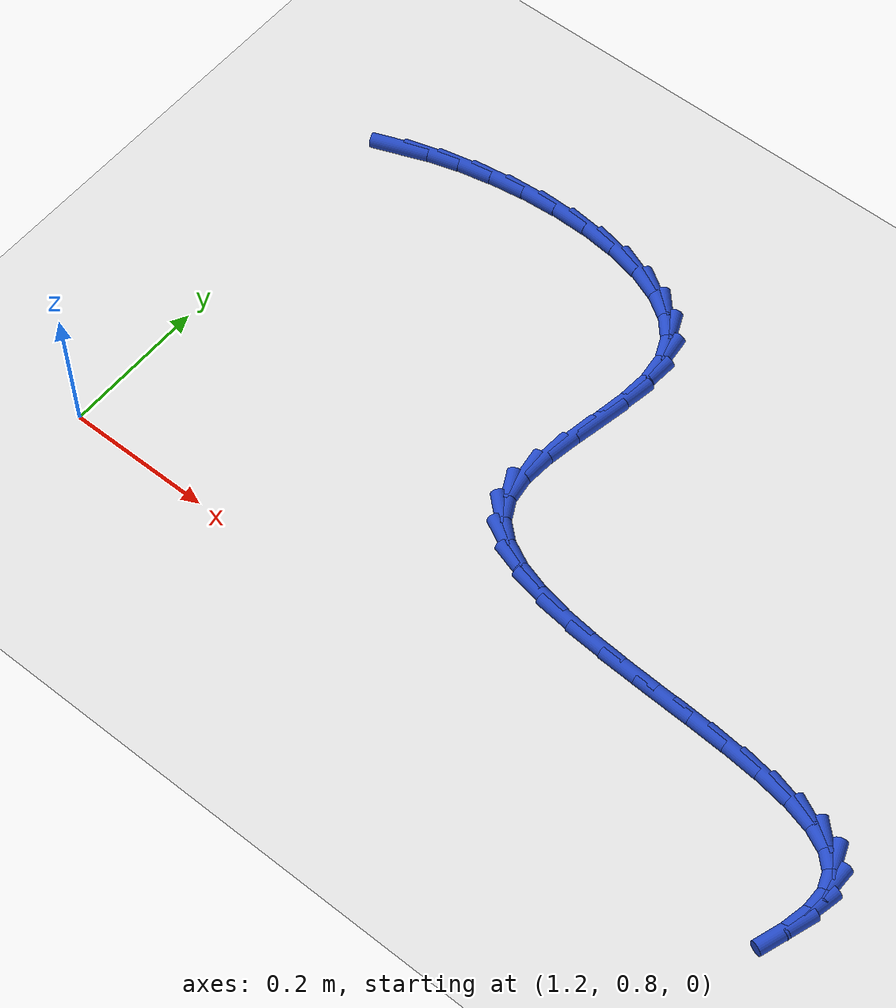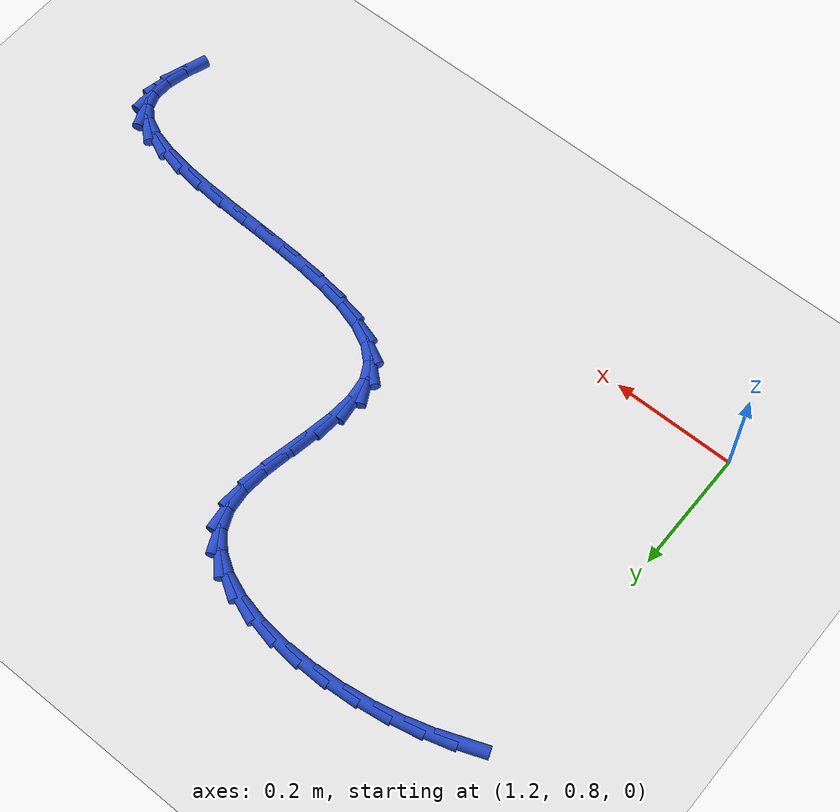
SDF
<sdf version="1.6">
 <world name="default">
  <model name="ground_plane">
   <static>1</static>
   <link name="link">
    <collision name="collision">
     <geometry><plane><normal>0 0 1</normal><size>100 100</size></plane></geometry>
     <surface><friction><ode><mu>100</mu><mu2>50</mu2></ode></friction></surface>
    </collision>
    <visual name="visual">
     <cast_shadows>0</cast_shadows>
     <geometry><plane><normal>0 0 1</normal><size>100 100</size></plane></geometry>
     <material>
      <script><uri>file://media/materials/scripts/gazebo.material</uri><name>Gazebo/WhiteGlow</name></script>
     </material>
    </visual>
   </link>
  </model>
  <model name="line">
   <link name="link_53">
    <pose>1.2377877267075943 1.3753082961202483 0.01 0 1.57 0.36587993217432146</pose>
    <collision name="collision">
     <geometry><cylinder><radius>0.01</radius><length>0.08</length></cylinder></geometry>
    </collision>
    <visual name="visual">
     <material>
      <script><name>Gazebo/Blue</name><uri>file://media/materials/scripts/gazebo.material</uri></script>
     </material>
     <geometry><cylinder><radius>0.01</radius><length>0.08</length></cylinder></geometry>
    </visual>
   </link>
   <link name="link_54">
    <pose>1.2789416327303853 1.391075625690705 0.01 0 1.57 0.28325678365939105</pose>
    <collision name="collision">
     <geometry><cylinder><radius>0.01</radius><length>0.08</length></cylinder></geometry>
    </collision>
    <visual name="visual">
     <material>
      <script><name>Gazebo/Blue</name><uri>file://media/materials/scripts/gazebo.material</uri></script>
     </material>
     <geometry><cylinder><radius>0.01</radius><length>0.08</length></cylinder></geometry>
    </visual>
   </link>
   <link name="link_55">
    <pose>1.3239797992044735 1.4041855028396157 0.01 0 1.57 0.20826863636165976</pose>
    <collision name="collision">
     <geometry><cylinder><radius>0.01</radius><length>0.08</length></cylinder></geometry>
    </collision>
    <visual name="visual">
     <material>
      <script><name>Gazebo/Blue</name><uri>file://media/materials/scripts/gazebo.material</uri></script>
     </material>
     <geometry><cylinder><radius>0.01</radius><length>0.08</length></cylinder></geometry>
    </visual>
   </link>
   <link name="link_56">
    <pose>1.3718929490592258 1.414311136912495 0.01 0 1.57 0.13714847889465667</pose>
    <collision name="collision">
     <geometry><cylinder><radius>0.01</radius><length>0.08</length></cylinder></geometry>
    </collision>
    <visual name="visual">
     <material>
      <script><name>Gazebo/Blue</name><uri>file://media/materials/scripts/gazebo.material</uri></script>
     </material>
     <geometry><cylinder><radius>0.01</radius><length>0.08</length></cylinder></geometry>
    </visual>
   </link>
   <link name="link_57">
    <pose>1.421344315159865 1.4211361625496135 0.01 0 1.57 0.06451998881389966</pose>
    <collision name="collision">
     <geometry><cylinder><radius>0.01</radius><length>0.08</length></cylinder></geometry>
    </collision>
    <visual name="visual">
     <material>
      <script><name>Gazebo/Blue</name><uri>file://media/materials/scripts/gazebo.material</uri></script>
     </material>
     <geometry><cylinder><radius>0.01</radius><length>0.08</length></cylinder></geometry>
    </visual>
   </link>
   <link name="link_58">
    <pose>1.4709971303716098 1.4243442143912395 0.01 0 1.57 -0.014947871091928031</pose>
    <collision name="collision">
     <geometry><cylinder><radius>0.01</radius><length>0.08</length></cylinder></geometry>
    </collision>
    <visual name="visual">
     <material>
      <script><name>Gazebo/Blue</name><uri>file://media/materials/scripts/gazebo.material</uri></script>
     </material>
     <geometry><cylinder><radius>0.01</radius><length>0.08</length></cylinder></geometry>
    </visual>
   </link>
   <link name="link_59">
    <pose>1.519514627559683 1.4236189270776434 0.01 0 1.57 -0.10762781949264737</pose>
    <collision name="collision">
     <geometry><cylinder><radius>0.01</radius><length>0.08</length></cylinder></geometry>
    </collision>
    <visual name="visual">
     <material>
      <script><name>Gazebo/Blue</name><uri>file://media/materials/scripts/gazebo.material</uri></script>
     </material>
     <geometry><cylinder><radius>0.01</radius><length>0.08</length></cylinder></geometry>
    </visual>
   </link>
   <link name="link_60">
    <pose>1.5655600395893052 1.4186439352490954 0.01 0 1.57 -0.22216691962087345</pose>
    <collision name="collision">
     <geometry><cylinder><radius>0.01</radius><length>0.08</length></cylinder></geometry>
    </collision>
    <visual name="visual">
     <material>
      <script><name>Gazebo/Blue</name><uri>file://media/materials/scripts/gazebo.material</uri></script>
     </material>
     <geometry><cylinder><radius>0.01</radius><length>0.08</length></cylinder></geometry>
    </visual>
   </link>
   <link name="link_61">
    <pose>1.6077965993256975 1.4091028735458642 0.01 0 1.57 -0.37087354583040577</pose>
    <collision name="collision">
     <geometry><cylinder><radius>0.01</radius><length>0.08</length></cylinder></geometry>
    </collision>
    <visual name="visual">
     <material>
      <script><name>Gazebo/Blue</name><uri>file://media/materials/scripts/gazebo.material</uri></script>
     </material>
     <geometry><cylinder><radius>0.01</radius><length>0.08</length></cylinder></geometry>
    </visual>
   </link>
   <link name="link_62">
    <pose>1.6448875396340805 1.3946793766082195 0.01 0 1.57 -0.5700735696764705</pose>
    <collision name="collision">
     <geometry><cylinder><radius>0.01</radius><length>0.08</length></cylinder></geometry>
    </collision>
    <visual name="visual">
     <material>
      <script><name>Gazebo/Blue</name><uri>file://media/materials/scripts/gazebo.material</uri></script>
     </material>
     <geometry><cylinder><radius>0.01</radius><length>0.08</length></cylinder></geometry>
    </visual>
   </link>
   <link name="link_63">
    <pose>1.6754960933796759 1.3750570790764312 0.01 0 1.57 -0.8343516583037315</pose>
    <collision name="collision">
     <geometry><cylinder><radius>0.01</radius><length>0.08</length></cylinder></geometry>
    </collision>
    <visual name="visual">
     <material>
      <script><name>Gazebo/Blue</name><uri>file://media/materials/scripts/gazebo.material</uri></script>
     </material>
     <geometry><cylinder><radius>0.01</radius><length>0.08</length></cylinder></geometry>
    </visual>
   </link>
   <link name="link_64">
    <pose>1.6982854934277045 1.3499196155907696 0.01 0 1.57 -1.1560919919292252</pose>
    <collision name="collision">
     <geometry><cylinder><radius>0.01</radius><length>0.08</length></cylinder></geometry>
    </collision>
    <visual name="visual">
     <material>
      <script><name>Gazebo/Blue</name><uri>file://media/materials/scripts/gazebo.material</uri></script>
     </material>
     <geometry><cylinder><radius>0.01</radius><length>0.08</length></cylinder></geometry>
    </visual>
   </link>
   <link name="link_65">
    <pose>1.7119191188033827 1.318950693500428 0.01 0 1.57 -1.4624965007417594</pose>
    <collision name="collision">
     <geometry><cylinder><radius>0.01</radius><length>0.08</length></cylinder></geometry>
    </collision>
    <visual name="visual">
     <material>
      <script><name>Gazebo/Blue</name><uri>file://media/materials/scripts/gazebo.material</uri></script>
     </material>
     <geometry><cylinder><radius>0.01</radius><length>0.08</length></cylinder></geometry>
    </visual>
   </link>
   <link name="link_66">
    <pose>1.7159087505874528 1.282256067249752 0.01 0 1.57 1.4903596662822713</pose>
    <collision name="collision">
     <geometry><cylinder><radius>0.01</radius><length>0.08</length></cylinder></geometry>
    </collision>
    <visual name="visual">
     <material>
      <script><name>Gazebo/Blue</name><uri>file://media/materials/scripts/gazebo.material</uri></script>
     </material>
     <geometry><cylinder><radius>0.01</radius><length>0.08</length></cylinder></geometry>
    </visual>
   </link>
   <link name="link_67">
    <pose>1.7126118618357997 1.2413571125960923 0.01 0 1.57 1.3963177285786905</pose>
    <collision name="collision">
     <geometry><cylinder><radius>0.01</radius><length>0.08</length></cylinder></geometry>
    </collision>
    <visual name="visual">
     <material>
      <script><name>Gazebo/Blue</name><uri>file://media/materials/scripts/gazebo.material</uri></script>
     </material>
     <geometry><cylinder><radius>0.01</radius><length>0.08</length></cylinder></geometry>
    </visual>
   </link>
   <link name="link_68">
    <pose>1.7049818964414296 1.1980716776579436 0.01 0 1.57 1.3681707289335718</pose>
    <collision name="collision">
     <geometry><cylinder><radius>0.01</radius><length>0.08</length></cylinder></geometry>
    </collision>
    <visual name="visual">
     <material>
      <script><name>Gazebo/Blue</name><uri>file://media/materials/scripts/gazebo.material</uri></script>
     </material>
     <geometry><cylinder><radius>0.01</radius><length>0.08</length></cylinder></geometry>
    </visual>
   </link>
   <link name="link_69">
    <pose>1.6959722982973509 1.1542176105538025 0.01 0 1.57 1.3980075887196655</pose>
    <collision name="collision">
     <geometry><cylinder><radius>0.01</radius><length>0.08</length></cylinder></geometry>
    </collision>
    <visual name="visual">
     <material>
      <script><name>Gazebo/Blue</name><uri>file://media/materials/scripts/gazebo.material</uri></script>
     </material>
     <geometry><cylinder><radius>0.01</radius><length>0.08</length></cylinder></geometry>
    </visual>
   </link>
   <link name="link_70">
    <pose>1.6885365112965702 1.1116127594021636 0.01 0 1.57 1.4973652478801267</pose>
    <collision name="collision">
     <geometry><cylinder><radius>0.01</radius><length>0.08</length></cylinder></geometry>
    </collision>
    <visual name="visual">
     <material>
      <script><name>Gazebo/Blue</name><uri>file://media/materials/scripts/gazebo.material</uri></script>
     </material>
     <geometry><cylinder><radius>0.01</radius><length>0.08</length></cylinder></geometry>
    </visual>
   </link>
   <link name="link_71">
    <pose>1.6856279793320958 1.0720749723215237 0.01 0 1.57 -1.4396121487080695</pose>
    <collision name="collision">
     <geometry><cylinder><radius>0.01</radius><length>0.08</length></cylinder></geometry>
    </collision>
    <visual name="visual">
     <material>
      <script><name>Gazebo/Blue</name><uri>file://media/materials/scripts/gazebo.material</uri></script>
     </material>
     <geometry><cylinder><radius>0.01</radius><length>0.08</length></cylinder></geometry>
    </visual>
   </link>
   <link name="link_72">
    <pose>1.690200146296934 1.0374220974303767 0.01 0 1.57 -1.0935645309023976</pose>
    <collision name="collision">
     <geometry><cylinder><radius>0.01</radius><length>0.08</length></cylinder></geometry>
    </collision>
    <visual name="visual">
     <material>
      <script><name>Gazebo/Blue</name><uri>file://media/materials/scripts/gazebo.material</uri></script>
     </material>
     <geometry><cylinder><radius>0.01</radius><length>0.08</length></cylinder></geometry>
    </visual>
   </link>
   <link name="link_73">
    <pose>1.7047857624948868 1.0092153885105788 0.01 0 1.57 -0.7335880757900309</pose>
    <collision name="collision">
     <geometry><cylinder><radius>0.01</radius><length>0.08</length></cylinder></geometry>
    </collision>
    <visual name="visual">
     <material>
      <script><name>Gazebo/Blue</name><uri>file://media/materials/scripts/gazebo.material</uri></script>
     </material>
     <geometry><cylinder><radius>0.01</radius><length>0.08</length></cylinder></geometry>
    </visual>
   </link>
   <link name="link_74">
    <pose>1.7291006380055527 0.9872979583341555 0.01 0 1.57 -0.4682707206913578</pose>
    <collision name="collision">
     <geometry><cylinder><radius>0.01</radius><length>0.08</length></cylinder></geometry>
    </collision>
    <visual name="visual">
     <material>
      <script><name>Gazebo/Blue</name><uri>file://media/materials/scripts/gazebo.material</uri></script>
     </material>
     <geometry><cylinder><radius>0.01</radius><length>0.08</length></cylinder></geometry>
    </visual>
   </link>
   <link name="link_75">
    <pose>1.761703950775782 0.9708074531234767 0.01 0 1.57 -0.2936385508577493</pose>
    <collision name="collision">
     <geometry><cylinder><radius>0.01</radius><length>0.08</length></cylinder></geometry>
    </collision>
    <visual name="visual">
     <material>
      <script><name>Gazebo/Blue</name><uri>file://media/materials/scripts/gazebo.material</uri></script>
     </material>
     <geometry><cylinder><radius>0.01</radius><length>0.08</length></cylinder></geometry>
    </visual>
   </link>
   <link name="link_76">
    <pose>1.8011513440065663 0.9588793631475234 0.01 0 1.57 -0.181496947684952</pose>
    <collision name="collision">
     <geometry><cylinder><radius>0.01</radius><length>0.08</length></cylinder></geometry>
    </collision>
    <visual name="visual">
     <material>
      <script><name>Gazebo/Blue</name><uri>file://media/materials/scripts/gazebo.material</uri></script>
     </material>
     <geometry><cylinder><radius>0.01</radius><length>0.08</length></cylinder></geometry>
    </visual>
   </link>
   <link name="link_77">
    <pose>1.8459984608988944 0.9506491786752759 0.01 0 1.57 -0.1101368084974789</pose>
    <collision name="collision">
     <geometry><cylinder><radius>0.01</radius><length>0.08</length></cylinder></geometry>
    </collision>
    <visual name="visual">
     <material>
      <script><name>Gazebo/Blue</name><uri>file://media/materials/scripts/gazebo.material</uri></script>
     </material>
     <geometry><cylinder><radius>0.01</radius><length>0.08</length></cylinder></geometry>
    </visual>
   </link>
   <link name="link_78">
    <pose>1.8948009446537577 0.9452523899757155 0.01 0 1.57 -0.06670403485473357</pose>
    <collision name="collision">
     <geometry><cylinder><radius>0.01</radius><length>0.08</length></cylinder></geometry>
    </collision>
    <visual name="visual">
     <material>
      <script><name>Gazebo/Blue</name><uri>file://media/materials/scripts/gazebo.material</uri></script>
     </material>
     <geometry><cylinder><radius>0.01</radius><length>0.08</length></cylinder></geometry>
    </visual>
   </link>
   <link name="link_79">
    <pose>1.946114438472147 0.9418244873178232 0.01 0 1.57 -0.04432985133204082</pose>
    <collision name="collision">
     <geometry><cylinder><radius>0.01</radius><length>0.08</length></cylinder></geometry>
    </collision>
    <visual name="visual">
     <material>
      <script><name>Gazebo/Blue</name><uri>file://media/materials/scripts/gazebo.material</uri></script>
     </material>
     <geometry><cylinder><radius>0.01</radius><length>0.08</length></cylinder></geometry>
    </visual>
   </link>
   <link name="link_80">
    <pose>1.998494585555052 0.9395009609705794 0.01 0 1.57 -0.04004707479056156</pose>
    <collision name="collision">
     <geometry><cylinder><radius>0.01</radius><length>0.08</length></cylinder></geometry>
    </collision>
    <visual name="visual">
     <material>
      <script><name>Gazebo/Blue</name><uri>file://media/materials/scripts/gazebo.material</uri></script>
     </material>
     <geometry><cylinder><radius>0.01</radius><length>0.08</length></cylinder></geometry>
    </visual>
   </link>
   <link name="link_81">
    <pose>2.050497029103463 0.9374173012029655 0.01 0 1.57 -0.05391903477997893</pose>
    <collision name="collision">
     <geometry><cylinder><radius>0.01</radius><length>0.08</length></cylinder></geometry>
    </collision>
    <visual name="visual">
     <material>
      <script><name>Gazebo/Blue</name><uri>file://media/materials/scripts/gazebo.material</uri></script>
     </material>
     <geometry><cylinder><radius>0.01</radius><length>0.08</length></cylinder></geometry>
    </visual>
   </link>
   <link name="link_82">
    <pose>2.1006774123183725 0.9347089982839624 0.01 0 1.57 -0.08923374550010647</pose>
    <collision name="collision">
     <geometry><cylinder><radius>0.01</radius><length>0.08</length></cylinder></geometry>
    </collision>
    <visual name="visual">
     <material>
      <script><name>Gazebo/Blue</name><uri>file://media/materials/scripts/gazebo.material</uri></script>
     </material>
     <geometry><cylinder><radius>0.01</radius><length>0.08</length></cylinder></geometry>
    </visual>
   </link>
   <link name="link_83">
    <pose>2.1475913784007687 0.9305115424825505 0.01 0 1.57 -0.15399897340929888</pose>
    <collision name="collision">
     <geometry><cylinder><radius>0.01</radius><length>0.08</length></cylinder></geometry>
    </collision>
    <visual name="visual">
     <material>
      <script><name>Gazebo/Blue</name><uri>file://media/materials/scripts/gazebo.material</uri></script>
     </material>
     <geometry><cylinder><radius>0.01</radius><length>0.08</length></cylinder></geometry>
    </visual>
   </link>
   <link name="link_84">
    <pose>2.1897945705516433 0.9239604240677112 0.01 0 1.57 -0.264650530142794</pose>
    <collision name="collision">
     <geometry><cylinder><radius>0.01</radius><length>0.08</length></cylinder></geometry>
    </collision>
    <visual name="visual">
     <material>
      <script><name>Gazebo/Blue</name><uri>file://media/materials/scripts/gazebo.material</uri></script>
     </material>
     <geometry><cylinder><radius>0.01</radius><length>0.08</length></cylinder></geometry>
    </visual>
   </link>
   <link name="link_85">
    <pose>2.2258426319719877 0.9141911333084253 0.01 0 1.57 -0.45312308627105474</pose>
    <collision name="collision">
     <geometry><cylinder><radius>0.01</radius><length>0.08</length></cylinder></geometry>
    </collision>
    <visual name="visual">
     <material>
      <script><name>Gazebo/Blue</name><uri>file://media/materials/scripts/gazebo.material</uri></script>
     </material>
     <geometry><cylinder><radius>0.01</radius><length>0.08</length></cylinder></geometry>
    </visual>
   </link>
   <link name="link_86">
    <pose>2.2542912058627897 0.9003391604736735 0.01 0 1.57 -0.7695486217417338</pose>
    <collision name="collision">
     <geometry><cylinder><radius>0.01</radius><length>0.08</length></cylinder></geometry>
    </collision>
    <visual name="visual">
     <material>
      <script><name>Gazebo/Blue</name><uri>file://media/materials/scripts/gazebo.material</uri></script>
     </material>
     <geometry><cylinder><radius>0.01</radius><length>0.08</length></cylinder></geometry>
    </visual>
   </link>
   <link name="link_87">
    <pose>2.273695935425043 0.8815399958324367 0.01 0 1.57 -1.2154777435496829</pose>
    <collision name="collision">
     <geometry><cylinder><radius>0.01</radius><length>0.08</length></cylinder></geometry>
    </collision>
    <visual name="visual">
     <material>
      <script><name>Gazebo/Blue</name><uri>file://media/materials/scripts/gazebo.material</uri></script>
     </material>
     <geometry><cylinder><radius>0.01</radius><length>0.08</length></cylinder></geometry>
    </visual>
   </link>
   <link name="link_88">
    <pose>2.282794165202648 0.8570209289830392 0.01 0 1.57 1.5560408549500264</pose>
    <collision name="collision">
     <geometry><cylinder><radius>0.01</radius><length>0.08</length></cylinder></geometry>
    </collision>
    <visual name="visual">
     <material>
      <script><name>Gazebo/Blue</name><uri>file://media/materials/scripts/gazebo.material</uri></script>
     </material>
     <geometry><cylinder><radius>0.01</radius><length>0.08</length></cylinder></geometry>
    </visual>
   </link>
   <link name="link_89">
    <pose>2.2823516625579665 0.8270340512747066 0.01 0 1.57 1.3447685262917117</pose>
    <collision name="collision">
     <geometry><cylinder><radius>0.01</radius><length>0.08</length></cylinder></geometry>
    </collision>
    <visual name="visual">
     <material>
      <script><name>Gazebo/Blue</name><uri>file://media/materials/scripts/gazebo.material</uri></script>
     </material>
     <geometry><cylinder><radius>0.01</radius><length>0.08</length></cylinder></geometry>
    </visual>
   </link>
   <link name="link_90">
    <pose>2.2744041069679217 0.7924730402913792 0.01 0 1.57 1.2337400680692618</pose>
    <collision name="collision">
     <geometry><cylinder><radius>0.01</radius><length>0.08</length></cylinder></geometry>
    </collision>
    <visual name="visual">
     <material>
      <script><name>Gazebo/Blue</name><uri>file://media/materials/scripts/gazebo.material</uri></script>
     </material>
     <geometry><cylinder><radius>0.01</radius><length>0.08</length></cylinder></geometry>
    </visual>
   </link>
  </model>
 </world>
</sdf>
